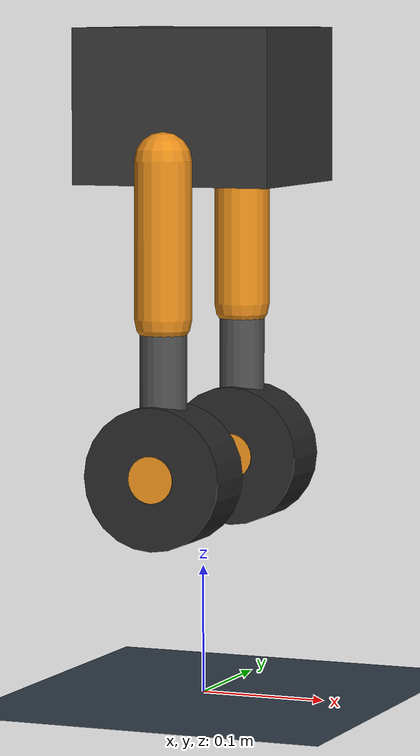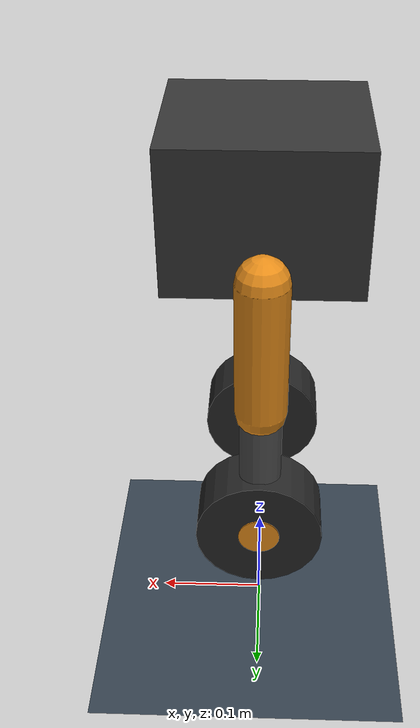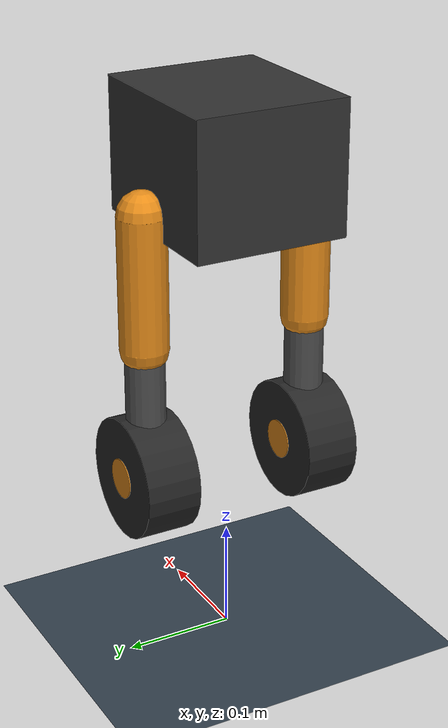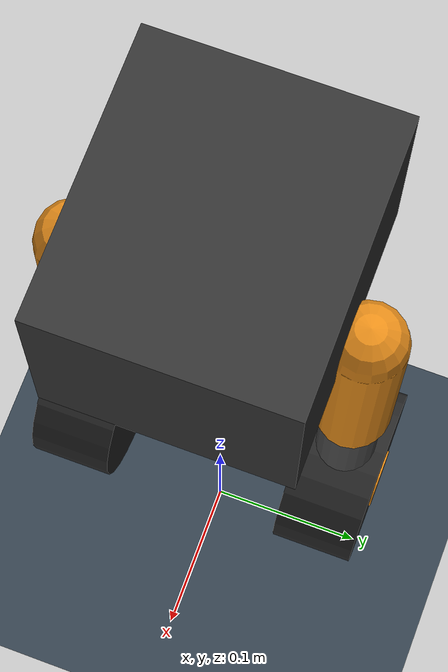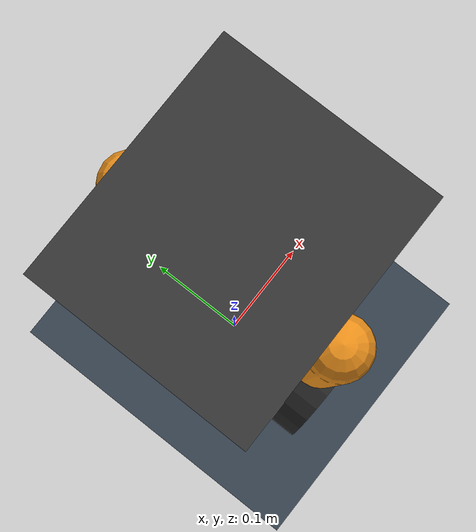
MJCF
<mujoco model="ascento_biped">
  <compiler angle="degree"/>
  <option timestep="0.002" gravity="0 0 -9.81" integrator="Euler"/>

  <default>
    <joint armature="0.02" limited="true"/>
    <geom friction="1.5 0.005 0.0001" condim="4"/>
    <motor ctrllimited="true"/>
  </default>

  <asset>
    <texture name="grid" type="2d" builtin="checker" rgb1="0.15 0.20 0.25" rgb2="0.25 0.30 0.35" width="512" height="512"/>
    <material name="grid_mat" texture="grid" texrepeat="10 10" reflectance="0.1"/>
    <material name="body_mat" rgba="0.2 0.2 0.2 1"/>
    <material name="upper_mat" rgba="0.9 0.55 0.1 1"/>
    <material name="lower_mat" rgba="0.3 0.3 0.3 1"/>
    <material name="wheel_mat" rgba="0.15 0.15 0.15 1"/>
    <material name="hub_mat" rgba="0.9 0.55 0.1 1"/>
  </asset>

  <worldbody>
    <light directional="true" diffuse="0.8 0.8 0.8" specular="0.3 0.3 0.3" pos="0 0 5" dir="0 0.3 -1"/>
    <geom name="floor" type="plane" size="30 30 0.1" material="grid_mat"/>

<body name="torso" pos="0 0 0.46">
      <!-- freejoint 주석 = torso 고정 (테스트용) -->
      <freejoint name="root"/>
      <site name="torso_imu" pos="0 0 0"/>
      <geom name="torso_box" type="box" size="0.08 0.07 0.06" mass="2.0" material="body_mat"/>

      <!-- LEFT LEG -->
      <body name="left_upper" pos="0 0.08 -0.04">
        <joint name="left_hip" type="hinge" axis="0 1 0" range="-80 80" damping="2.0" armature="0.08"/>
        <geom type="capsule" fromto="0 0 0 0 0 -0.12" size="0.022" mass="0.2" material="upper_mat"/>

        <body name="left_lower" pos="0 0 -0.12">
          <joint name="left_knee" type="hinge" axis="0 1 0" range="-130 -5" damping="2.0" armature="0.04"/>
          <geom type="capsule" fromto="0 0 0 0 0 -0.12" size="0.018" mass="0.15" material="lower_mat"/>

          <body name="left_wheel_body" pos="0 0 -0.12">
            <joint name="left_wheel" type="hinge" axis="0 1 0" damping="0.01" limited="false"/>
            <geom name="lw" type="cylinder" size="0.055 0.025" euler="90 0 0"
                  mass="0.25" material="wheel_mat" friction="2.0 0.005 0.0001"/>
            <geom type="cylinder" size="0.018 0.026" euler="90 0 0" mass="0.01" material="hub_mat"/>
          </body>
        </body>
      </body>

      <!-- RIGHT LEG -->
      <body name="right_upper" pos="0 -0.08 -0.04">
        <joint name="right_hip" type="hinge" axis="0 1 0" range="-80 80" damping="2.0" armature="0.08"/>
        <geom type="capsule" fromto="0 0 0 0 0 -0.12" size="0.022" mass="0.2" material="upper_mat"/>

        <body name="right_lower" pos="0 0 -0.12">
          <joint name="right_knee" type="hinge" axis="0 1 0" range="-130 -5" damping="2.0" armature="0.04"/>
          <geom type="capsule" fromto="0 0 0 0 0 -0.12" size="0.018" mass="0.15" material="lower_mat"/>

          <body name="right_wheel_body" pos="0 0 -0.12">
            <joint name="right_wheel" type="hinge" axis="0 1 0" damping="0.01" limited="false"/>
            <geom name="rw" type="cylinder" size="0.055 0.025" euler="90 0 0"
                  mass="0.25" material="wheel_mat" friction="2.0 0.005 0.0001"/>
            <geom type="cylinder" size="0.018 0.026" euler="90 0 0" mass="0.01" material="hub_mat"/>
          </body>
        </body>
      </body>

    </body>
  </worldbody>
  <equality>
    <!-- hip이 +1도 → knee가 -1도 (평행사변형: 반대방향 1:1) -->
    <joint joint1="left_hip" joint2="left_knee" polycoef="0 -1 0 0 0"/>
    <joint joint1="right_hip" joint2="right_knee" polycoef="0 -1 0 0 0"/>
  </equality>

  <actuator>
    <position name="left_hip_pos" joint="left_hip" kp="50" ctrlrange="-80 80"/>
    <position name="right_hip_pos" joint="right_hip" kp="50" ctrlrange="-80 80"/>
    <motor name="left_wheel_torque" joint="left_wheel" gear="1" ctrlrange="-8 8"/>
    <motor name="right_wheel_torque" joint="right_wheel" gear="1" ctrlrange="-8 8"/>
  </actuator>

  <sensor>
    <gyro name="torso_gyro" site="torso_imu"/>
    <accelerometer name="torso_accel" site="torso_imu"/>
  </sensor>
<keyframe>
  <!-- qpos: left_hip, left_knee, left_wheel, right_hip, right_knee, right_wheel -->
  <key name="home"
       qpos="30 -30 0  30 -30 0"
       ctrl="30 30 0 0"/>
</keyframe>
</mujoco>
